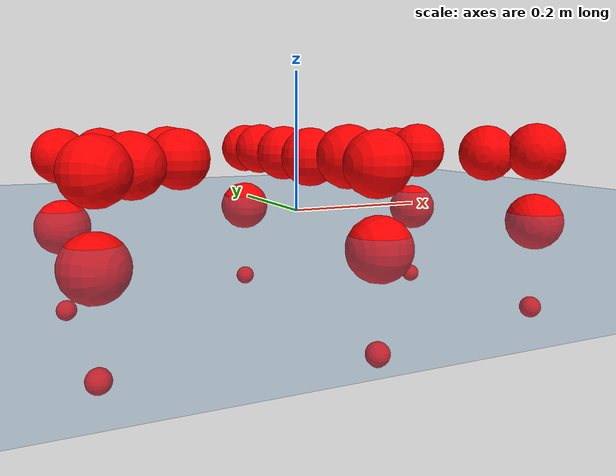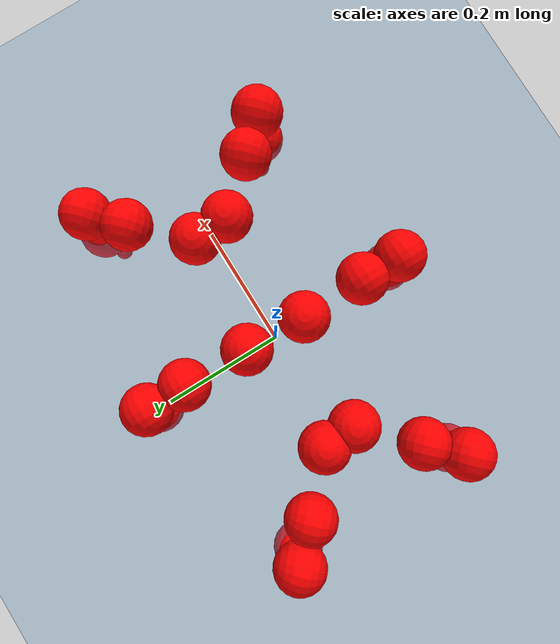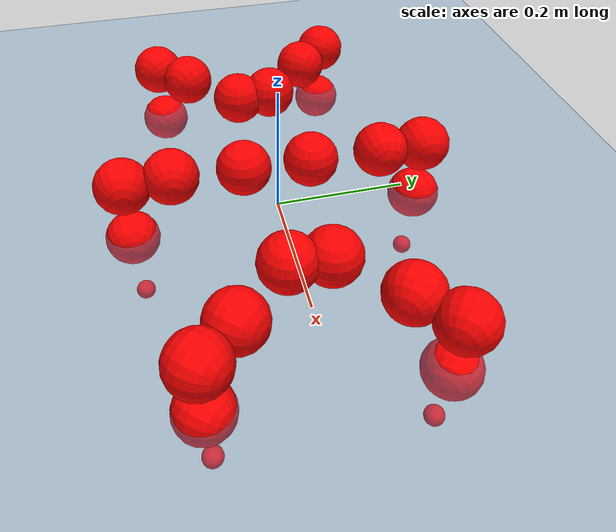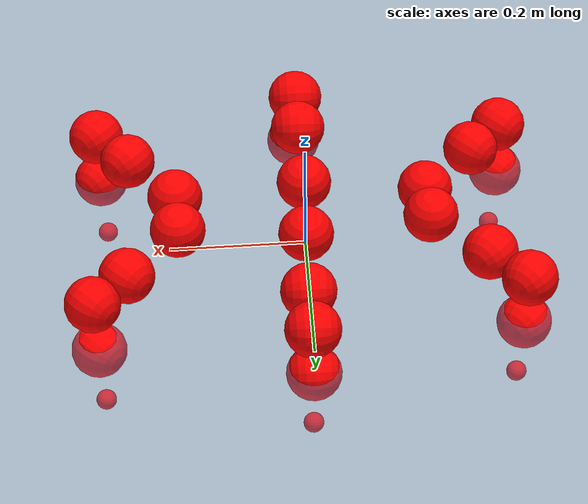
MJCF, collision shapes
<mujoco model="Golem">
  <compiler angle="radian" assetdir="assets" balanceinertia="true" inertiafromgeom="false"/>

  <option timestep="0.005" density="1.2" viscosity="2e-05"/>

  <size nkey="1"/>

  <visual>
    <quality shadowsize="8192"/>
    <map shadowclip="0.5"/>
  </visual>

  <default>
    <default class="/">
      <joint armature="0.01" damping="0.01" frictionloss="0.01"/>
      <geom contype="0" conaffinity="0" group="1" solref="-1000 -80"/>
      <site size="0.01 0.005 0.005" group="5"/>
      <general forcelimited="true" biastype="affine" gainprm="25" biasprm="0 -25 -0.5"/>
      <default class="visual">
        <geom type="mesh" group="2"/>
      </default>
      <default class="collision">
        <geom group="3"/>
      </default>
      <default class="foot">
        <geom size="0.01 0 0" condim="6" group="4" priority="1" solimp="0.015 1 0.01"/>
      </default>
      <default class="reward_collision_sphere">
        <geom group="5" rgba="1 0 0 1"/>
      </default>
    </default>
  </default>

  <asset>
    <texture type="skybox" colorspace="auto" name="//unnamed_texture_0" builtin="gradient" rgb1="0.95 0.95 0.95" rgb2="0.95 0.95 0.95" width="100" height="600"/>
    <texture type="2d" colorspace="auto" name="texplane" builtin="checker" rgb1="0.345 0.575 0.748" rgb2="0.345 0.575 0.748" markrgb="1 1 1" width="512" height="512"/>
    <material name="MatPlane" class="/" texture="texplane" texuniform="true" texrepeat="2 2" specular="0.9"/>
    <mesh name="body" class="/" file="body.stl" scale="0.001 0.001 0.001"/>
    <mesh name="coxa" class="/" file="coxa.stl" scale="0.001 0.001 0.001"/>
    <mesh name="femur" class="/" file="femur.stl" scale="0.001 0.001 0.001"/>
    <mesh name="tibia" class="/" file="tibia.stl" scale="0.001 0.001 0.001"/>
    <mesh name="tarsus" class="/" file="tarsus.stl" scale="0.001 0.001 0.001"/>
  </asset>

  <worldbody>
    <geom name="floor" class="/" size="100 100 0.125" type="plane" group="0" material="MatPlane"/>
    <light name="toplight_shadow" class="/" pos="0 0 5" dir="0.0990148 0.0990148 -0.990148" type="directional" ambient="0.04 0.04 0.04" diffuse="0.55 0.55 0.55" specular="0.12 0.12 0.12"/>
    <light name="toplight_fill" class="/" pos="0 0 5" dir="0.0990148 0.0990148 -0.990148" type="directional" castshadow="false" ambient="0.04 0.04 0.04" diffuse="0.3 0.3 0.3" specular="0.08 0.08 0.08"/>
    <body name="trunk" pos="0.0024456 -0.000372218 0.00295003" quat="1 0.000508624 1.15599e-05 -0.000568166">
      <inertial pos="9.54311e-05 -0.00128859 0.000978605" quat="0.999955 0.00770873 -0.00460553 0.0030825" mass="3.71865" diaginertia="0.0209806 0.00098353 0.0262997"/>
      <joint name="//unnamed_joint_0" type="free"/>
      <geom name="//unnamed_geom_1" class="/" pos="0 0 0.0775987" quat="1 0 0 0" type="mesh" rgba="0.9 0.9 0.9 1" mesh="body"/>
      <site name="imu" class="/" pos="0.143314 0.00163401 0.112402" size="0.010045"/>
      <camera name="track" class="/" pos="0 -1.2675 0" quat="0.707107 0.707107 0 0" mode="trackcom"/>
      <camera name="ego_camera" class="/" pos="0.151747 0 0.121248" quat="-0.5 -0.5 0.5 0.5"/>
      <body name="coxa_RR" pos="-0.204894 -0.0505349 0.0772011" quat="0.383376 0.00205026 -0.000699598 -0.92359">
        <inertial pos="0.00393083 -0.0004364 0.00172146" quat="0.999954 -0.00260786 -0.00912492 0.00111986" mass="0.207353" diaginertia="0.0218545 0.00104359 0.0275205"/>
        <joint name="coxa_joint_RR" class="/" pos="0 0 0" axis="-0.00198594 -0.00482709 -0.999986" range="-3.1699 3.18875" armature="0.00892997" damping="0.00178943" frictionloss="0.00906602"/>
        <geom name="//unnamed_geom_2" class="/" type="mesh" rgba="0.2 0.2 0.2 1" mesh="coxa"/>
        <geom name="//unnamed_geom_3" class="reward_collision_sphere" size="0.0401802" pos="-0.0350185 0 0"/>
        <body name="femur_RR" pos="0.0712766 -0.00124527 -0.000941169" quat="0.499991 -0.500254 0.499986 0.499769">
          <inertial pos="-0.0014592 -0.00196913 -0.00285101" quat="1 -0.000406336 -6.13202e-05 0.000769318" mass="0.204781" diaginertia="0.021633 0.00102702 0.0275995"/>
          <joint name="femur_joint_RR" class="/" pos="0 0 0" axis="0.00452936 -0.00854965 -0.999953" range="-3.08967 3.15592" armature="0.00938645" damping="0.0171984" frictionloss="0.0088207"/>
          <geom name="//unnamed_geom_4" class="/" type="mesh" rgba="0.9 0.9 0.9 1" mesh="femur"/>
          <geom name="//unnamed_geom_5" class="reward_collision_sphere" size="0.0401802"/>
          <body name="tibia_RR" pos="0.0014087 -0.0666811 -0.000356428" quat="1.94252e-05 1 0.000117009 5.96115e-05">
            <inertial pos="-0.0016971 -0.00212097 0.00292356" quat="0.999945 0.00921498 -0.00486289 0.000897936" mass="0.195874" diaginertia="0.0217561 0.00100488 0.0265725"/>
            <joint name="tibia_joint_RR" class="/" pos="0 0 0" axis="0.0038834 -0.00478656 0.999981" range="-3.13711 3.14753" armature="0.010038" damping="0.0155451" frictionloss="0.0110864"/>
            <geom name="//unnamed_geom_6" class="/" type="mesh" rgba="0.2 0.2 0.2 1" mesh="tibia"/>
            <geom name="//unnamed_geom_7" class="reward_collision_sphere" size="0.0401802"/>
            <body name="tarsus_RR" pos="0.103893 0.00254948 0.00296432" quat="0.999999 -0.000833929 -0.000902855 0.000185153">
              <inertial pos="0.072712 0.00378451 0.00205735" quat="0.491646 0.509004 0.497306 0.501882" mass="0.211969" diaginertia="0.0215364 0.00101452 0.0264688"/>
              <joint name="tarsus_joint_RR" class="/" pos="0 0 0" axis="0.00448569 0.00259135 0.999987" range="-3.14078 3.10576" armature="0.00965475" damping="0.0126246" frictionloss="0.00885936"/>
              <geom name="//unnamed_geom_8" class="/" type="mesh" rgba="0.9 0.9 0.9 1" mesh="tarsus"/>
              <geom name="foot_1" class="foot" size="0.00924164" pos="0.130736 0 0" quat="0 -0.707107 0 0.707107"/>
              <geom name="//unnamed_geom_10" class="reward_collision_sphere" size="0.0401802"/>
              <geom name="//unnamed_geom_11" class="reward_collision_sphere" size="0.0150676" pos="0.125483 0 0"/>
              <site name="foot_1" class="foot" pos="0.130736 0 0" quat="0 -0.707107 0 0.707107" size="0.010045"/>
            </body>
          </body>
        </body>
      </body>
      <body name="coxa_RM" pos="-0.00383827 -0.0840326 0.0774541" quat="0.707676 0.000195449 3.74753e-05 -0.706537">
        <inertial pos="-0.000641083 -0.000513548 0.00467614" quat="0.999922 0.00327411 -0.011547 -0.00343867" mass="0.206341" diaginertia="0.0220643 0.00105844 0.0271017"/>
        <joint name="coxa_joint_RM" class="/" pos="0 0 0" axis="0.00486744 -0.00180992 -0.999987" range="-3.13857 3.09368" armature="0.00931767" damping="0.017567" frictionloss="0.0102434"/>
        <geom name="//unnamed_geom_12" class="/" type="mesh" rgba="0.2 0.2 0.2 1" mesh="coxa"/>
        <geom name="//unnamed_geom_13" class="reward_collision_sphere" size="0.0401802" pos="-0.0350185 0 0"/>
        <body name="femur_RM" pos="0.0687073 0.00222522 0.00569399" quat="0.498506 -0.501633 0.499868 0.499988">
          <inertial pos="-0.00253959 -0.0004412 0.000120633" quat="0.999862 -0.000138116 -0.00317149 0.0163006" mass="0.208799" diaginertia="0.0210234 0.000999773 0.0259536"/>
          <joint name="femur_joint_RM" class="/" pos="0 0 0" axis="-0.00649038 0.00988999 -0.99993" range="-3.10808 3.10641" armature="0.0080909" damping="0.000226477" frictionloss="0.00975513"/>
          <geom name="//unnamed_geom_14" class="/" type="mesh" rgba="0.9 0.9 0.9 1" mesh="femur"/>
          <geom name="//unnamed_geom_15" class="reward_collision_sphere" size="0.0401802"/>
          <body name="tibia_RM" pos="0.00483138 -0.0675708 -0.000491453" quat="0.000106999 1 0.000393455 -0.000166747">
            <inertial pos="-0.00225051 0.000829533 0.00256879" quat="0.999976 0.0016508 -0.00663613 0.000782399" mass="0.213547" diaginertia="0.0227088 0.00104378 0.0258939"/>
            <joint name="tibia_joint_RM" class="/" pos="0 0 0" axis="0.00415576 0.0111173 0.99993" range="-3.11263 3.17297" armature="0.0107767" damping="0" frictionloss="0.00888209"/>
            <geom name="//unnamed_geom_16" class="/" type="mesh" rgba="0.2 0.2 0.2 1" mesh="tibia"/>
            <geom name="//unnamed_geom_17" class="reward_collision_sphere" size="0.0401802"/>
            <body name="tarsus_RM" pos="0.0988293 0.00165561 -0.00367781" quat="1 7.67812e-05 0.000834842 0.000477954">
              <inertial pos="0.0680437 0.000492886 -0.00161217" quat="0.499508 0.497837 0.500663 0.501982" mass="0.202667" diaginertia="0.0209605 0.00101863 0.0253395"/>
              <joint name="tarsus_joint_RM" class="/" pos="0 0 0" axis="-0.000121806 -0.0104548 0.999945" stiffness="0.0179528" range="-3.11298 3.04094" armature="0.00977588" damping="0.0246622" frictionloss="0.00879432"/>
              <geom name="//unnamed_geom_18" class="/" type="mesh" rgba="0.9 0.9 0.9 1" mesh="tarsus"/>
              <geom name="foot_2" class="foot" size="0.0108811" pos="0.130736 0 0" quat="0 -0.707107 0 0.707107"/>
              <geom name="//unnamed_geom_20" class="reward_collision_sphere" size="0.0401802"/>
              <geom name="//unnamed_geom_21" class="reward_collision_sphere" size="0.0150676" pos="0.125483 0 0"/>
              <site name="foot_2" class="foot" pos="0.130736 0 0" quat="0 -0.707107 0 0.707107" size="0.010045"/>
            </body>
          </body>
        </body>
      </body>
      <body name="coxa_RF" pos="0.21059 -0.0541416 0.0817807" quat="0.923717 0.000993733 -0.000606529 -0.383074">
        <inertial pos="-0.00268994 0.00236609 -0.00252377" quat="0.999917 0.0109476 0.00464912 0.00503557" mass="0.194815" diaginertia="0.0209119 0.000992249 0.0262389"/>
        <joint name="coxa_joint_RF" class="/" pos="0 0 0" axis="-0.00563641 0.0095818 -0.999938" range="-3.13291 3.08917" armature="0.0103026" damping="0.00571985" frictionloss="0.00901877"/>
        <geom name="//unnamed_geom_22" class="/" type="mesh" rgba="0.2 0.2 0.2 1" mesh="coxa"/>
        <geom name="//unnamed_geom_23" class="reward_collision_sphere" size="0.0401802" pos="-0.0350185 0 0"/>
        <body name="femur_RF" pos="0.0668861 -0.00511519 -0.00208214" quat="0.497878 -0.50061 0.501094 0.500413">
          <inertial pos="0.00212819 -0.0018727 -0.00172966" quat="0.999991 -0.000493354 0.000193483 -0.00415268" mass="0.198674" diaginertia="0.021137 0.0010272 0.0253053"/>
          <joint name="femur_joint_RF" class="/" pos="0 0 0" axis="0.0122595 -0.0013249 -0.999924" stiffness="0.00596431" range="-3.11245 3.15801" armature="0.00897174" damping="0.0157289" frictionloss="0.00989483"/>
          <geom name="//unnamed_geom_24" class="/" type="mesh" rgba="0.9 0.9 0.9 1" mesh="femur"/>
          <geom name="//unnamed_geom_25" class="reward_collision_sphere" size="0.0401802"/>
          <body name="tibia_RF" pos="-0.00366723 -0.0668423 -0.00193411" quat="0.000108635 0.999999 0.00113607 -0.000406422">
            <inertial pos="-0.0017054 0.00119437 -0.000725394" quat="0.999955 -0.00479742 0.00227625 -0.00787838" mass="0.21885" diaginertia="0.0231343 0.00107361 0.026706"/>
            <joint name="tibia_joint_RF" class="/" pos="0 0 0" axis="-0.000239935 0.00139258 0.999999" stiffness="0.0218966" range="-3.11684 3.16976" armature="0.0103247" damping="0.0382225" frictionloss="0.01017"/>
            <geom name="//unnamed_geom_26" class="/" type="mesh" rgba="0.2 0.2 0.2 1" mesh="tibia"/>
            <geom name="//unnamed_geom_27" class="reward_collision_sphere" size="0.0401802"/>
            <body name="tarsus_RF" pos="0.100006 0.00246588 0.000552059" quat="1 9.36322e-05 4.91998e-05 -2.46877e-05">
              <inertial pos="0.0718278 0.000840232 0.00241089" quat="0.50148 0.499125 0.500322 0.499069" mass="0.198803" diaginertia="0.0224658 0.00100231 0.0266754"/>
              <joint name="tarsus_joint_RF" class="/" pos="0 0 0" axis="0.00197751 -0.0147776 0.999889" range="-3.13624 3.08707" armature="0.0112566" damping="0" frictionloss="0.00894913"/>
              <geom name="//unnamed_geom_28" class="/" type="mesh" rgba="0.9 0.9 0.9 1" mesh="tarsus"/>
              <geom name="foot_3" class="foot" size="0.00989169" pos="0.130736 0 0" quat="0 -0.707107 0 0.707107"/>
              <geom name="//unnamed_geom_30" class="reward_collision_sphere" size="0.0401802"/>
              <geom name="//unnamed_geom_31" class="reward_collision_sphere" size="0.0150676" pos="0.125483 0 0"/>
              <site name="foot_3" class="foot" pos="0.130736 0 0" quat="0 -0.707107 0 0.707107" size="0.010045"/>
            </body>
          </body>
        </body>
      </body>
      <body name="coxa_LR" pos="-0.207973 0.0521702 0.0790821" quat="0.382828 -9.4668e-05 -4.0911e-05 0.92382">
        <inertial pos="0.000949489 -0.00239478 0.000815711" quat="0.999999 -0.00125303 0.000732931 -0.000514694" mass="0.207422" diaginertia="0.0226754 0.00105736 0.0267721"/>
        <joint name="coxa_joint_LR" class="/" pos="0 0 0" axis="0.00624045 -0.00318527 -0.999975" range="-3.12623 3.09321" armature="0.0111414" damping="0.00391898" frictionloss="0.00959149"/>
        <geom name="//unnamed_geom_32" class="/" type="mesh" rgba="0.2 0.2 0.2 1" mesh="coxa"/>
        <geom name="//unnamed_geom_33" class="reward_collision_sphere" size="0.0401802" pos="-0.0350185 0 0"/>
        <body name="femur_LR" pos="0.0709167 0.00376903 -0.0024509" quat="0.499904 -0.500096 0.499987 0.500012">
          <inertial pos="-0.00120739 -0.00165456 0.00395649" quat="0.99998 -0.000211175 0.00351471 -0.00515799" mass="0.212198" diaginertia="0.0223559 0.00105966 0.027151"/>
          <joint name="femur_joint_LR" class="/" pos="0 0 0" axis="0.00649533 0.0198484 0.999782" stiffness="0.00573984" range="-3.15973 3.13552" armature="0.0102903" damping="0.000503702" frictionloss="0.00898176"/>
          <geom name="//unnamed_geom_34" class="/" type="mesh" rgba="0.9 0.9 0.9 1" mesh="femur"/>
          <geom name="//unnamed_geom_35" class="reward_collision_sphere" size="0.0401802"/>
          <body name="tibia_LR" pos="0.00116048 -0.0707945 0.000118984" quat="8.23058e-05 1 0.000607831 -0.000312328">
            <inertial pos="-0.0017773 -0.00209548 -0.000756047" quat="0.999917 0.00714577 0.0105338 -0.0021029" mass="0.205506" diaginertia="0.0226447 0.00104057 0.0258788"/>
            <joint name="tibia_joint_LR" class="/" pos="0 0 0" axis="-0.0191511 -0.0153689 -0.999698" range="-3.16727 3.23869" armature="0.00785308" damping="0.0363557" frictionloss="0.0100295"/>
            <geom name="//unnamed_geom_36" class="/" type="mesh" rgba="0.2 0.2 0.2 1" mesh="tibia"/>
            <geom name="//unnamed_geom_37" class="reward_collision_sphere" size="0.0401802"/>
            <body name="tarsus_LR" pos="0.104258 -0.00080385 -0.00218549" quat="0.999999 0.000134606 -0.000331992 -0.0012308">
              <inertial pos="0.0660616 -0.00203243 0.0050744" quat="0.500827 0.499297 0.499942 0.499933" mass="0.205636" diaginertia="0.0216124 0.000988631 0.0269171"/>
              <joint name="tarsus_joint_LR" class="/" pos="0 0 0" axis="0.00412113 -0.00081398 -0.999991" range="-3.12912 3.12083" armature="0.0103534" damping="0" frictionloss="0.0102478"/>
              <geom name="//unnamed_geom_38" class="/" type="mesh" rgba="0.9 0.9 0.9 1" mesh="tarsus"/>
              <geom name="foot_4" class="foot" size="0.010388" pos="0.130736 0 0" quat="0.707107 0 -0.707107 0"/>
              <geom name="//unnamed_geom_40" class="reward_collision_sphere" size="0.0401802"/>
              <geom name="//unnamed_geom_41" class="reward_collision_sphere" size="0.0150676" pos="0.125483 0 0"/>
              <site name="foot_4" class="foot" pos="0.130736 0 0" quat="0.707107 0 -0.707107 0" size="0.010045"/>
            </body>
          </body>
        </body>
      </body>
      <body name="coxa_LM" pos="-0.000537866 0.0844755 0.0783208" quat="0.707786 0.000208066 -0.000984986 0.706427">
        <inertial pos="0.000384765 0.00267696 -0.00441058" quat="0.999972 -0.00120496 -0.00577636 -0.00451913" mass="0.197711" diaginertia="0.0203825 0.000988807 0.0255518"/>
        <joint name="coxa_joint_LM" class="/" pos="0 0 0" axis="0.00537285 0.00564249 -0.99997" range="-3.15931 3.0938" armature="0.0119952" damping="0.00850564" frictionloss="0.0102492"/>
        <geom name="//unnamed_geom_42" class="/" type="mesh" rgba="0.2 0.2 0.2 1" mesh="coxa"/>
        <geom name="//unnamed_geom_43" class="reward_collision_sphere" size="0.0401802" pos="-0.0350185 0 0"/>
        <body name="femur_LM" pos="0.0705502 -0.00325861 0.00152304" quat="0.499985 -0.499952 0.500064 0.5">
          <inertial pos="0.00388244 0.000575219 -0.000338514" quat="0.999989 -0.00247398 -0.00131458 -0.00372513" mass="0.215264" diaginertia="0.021804 0.00107369 0.0280763"/>
          <joint name="femur_joint_LM" class="/" pos="0 0 0" axis="-0.0141739 -0.000464583 0.999899" range="-3.14877 3.14411" armature="0.00893811" damping="0.000842696" frictionloss="0.00950749"/>
          <geom name="//unnamed_geom_44" class="/" type="mesh" rgba="0.9 0.9 0.9 1" mesh="femur"/>
          <geom name="//unnamed_geom_45" class="reward_collision_sphere" size="0.0401802"/>
          <body name="tibia_LM" pos="0.0017645 -0.0661829 0.00171408" quat="0.00127051 0.999999 -8.68079e-05 3.18557e-05">
            <inertial pos="0.00281251 8.26667e-05 -0.000510449" quat="0.999985 0.00475573 -0.00185178 -0.00187237" mass="0.206645" diaginertia="0.0217879 0.000986714 0.0260984"/>
            <joint name="tibia_joint_LM" class="/" pos="0 0 0" axis="-0.00590057 -0.0132616 -0.999895" range="-3.10124 3.09346" armature="0.0115341" damping="0.000783138" frictionloss="0.0109328"/>
            <geom name="//unnamed_geom_46" class="/" type="mesh" rgba="0.2 0.2 0.2 1" mesh="tibia"/>
            <geom name="//unnamed_geom_47" class="reward_collision_sphere" size="0.0401802"/>
            <body name="tarsus_LM" pos="0.100694 0.00221234 -0.00170776" quat="1 -4.81816e-05 -4.04387e-05 3.28894e-05">
              <inertial pos="0.0667566 -0.00214155 -0.00231047" quat="0.500026 0.499937 0.499912 0.500125" mass="0.204119" diaginertia="0.0212514 0.00100555 0.0257086"/>
              <joint name="tarsus_joint_LM" class="/" pos="0 0 0" axis="-0.00194828 -0.00424768 -0.999989" stiffness="0.0118513" range="-3.15955 3.13213" armature="0.00984593" damping="0.0251623" frictionloss="0.00876078"/>
              <geom name="//unnamed_geom_48" class="/" type="mesh" rgba="0.9 0.9 0.9 1" mesh="tarsus"/>
              <geom name="foot_5" class="foot" size="0.00982858" pos="0.130736 0 0" quat="0.707107 0 -0.707107 0"/>
              <geom name="//unnamed_geom_50" class="reward_collision_sphere" size="0.0401802"/>
              <geom name="//unnamed_geom_51" class="reward_collision_sphere" size="0.0150676" pos="0.125483 0 0"/>
              <site name="foot_5" class="foot" pos="0.130736 0 0" quat="0.707107 0 -0.707107 0" size="0.010045"/>
            </body>
          </body>
        </body>
      </body>
      <body name="coxa_LF" pos="0.208105 0.0530235 0.0757011" quat="0.923618 0.00129351 0.000132946 0.383313">
        <inertial pos="-0.000818748 -0.000840222 0.00242878" quat="0.999884 0.00657601 -0.00137942 0.0136941" mass="0.203245" diaginertia="0.0203033 0.00105167 0.0262046"/>
        <joint name="coxa_joint_LF" class="/" pos="0 0 0" axis="-0.000825133 -0.00805055 -0.999967" range="-3.09565 3.18412" armature="0.00950927" damping="0.00279822" frictionloss="0.00939394"/>
        <geom name="//unnamed_geom_52" class="/" type="mesh" rgba="0.2 0.2 0.2 1" mesh="coxa"/>
        <geom name="//unnamed_geom_53" class="reward_collision_sphere" size="0.0401802" pos="-0.0350185 0 0"/>
        <body name="femur_LF" pos="0.0723677 0.00250417 -0.00220016" quat="0.500342 -0.5001 0.500364 0.499194">
          <inertial pos="0.001525 -0.000432896 0.00046651" quat="0.999951 0.00351951 -0.00920263 -0.00131785" mass="0.19645" diaginertia="0.0220754 0.00103755 0.0262759"/>
          <joint name="femur_joint_LF" class="/" pos="0 0 0" axis="0.014 -0.00199979 0.9999" stiffness="0.00678831" range="-3.08998 3.15953" armature="0.010154" damping="0.0123519" frictionloss="0.00992589"/>
          <geom name="//unnamed_geom_54" class="/" type="mesh" rgba="0.9 0.9 0.9 1" mesh="femur"/>
          <geom name="//unnamed_geom_55" class="reward_collision_sphere" size="0.0401802"/>
          <body name="tibia_LF" pos="0.00401541 -0.066098 -0.00269474" quat="-0.000150704 1 0.000103945 -0.00010937">
            <inertial pos="0.00137702 -0.000422543 -0.00192879" quat="0.999706 0.000579682 0.0141858 0.0196754" mass="0.194517" diaginertia="0.0217493 0.00105137 0.0255456"/>
            <joint name="tibia_joint_LF" class="/" pos="0 0 0" axis="0.00475329 0.0110866 -0.999927" stiffness="0.020769" range="-3.13231 3.17328" armature="0.0100585" damping="0.0223361" frictionloss="0.00884416"/>
            <geom name="//unnamed_geom_56" class="/" type="mesh" rgba="0.2 0.2 0.2 1" mesh="tibia"/>
            <geom name="//unnamed_geom_57" class="reward_collision_sphere" size="0.0401802"/>
            <body name="tarsus_LF" pos="0.102991 0.00153265 -0.00315587" quat="1 8.66166e-05 0.0009254 5.75862e-05">
              <inertial pos="0.0693619 -0.00298476 -0.000383917" quat="0.499352 0.506784 0.489739 0.503958" mass="0.217309" diaginertia="0.0227585 0.00106645 0.0270468"/>
              <joint name="tarsus_joint_LF" class="/" pos="0 0 0" axis="-0.0113989 -0.000142476 -0.999935" stiffness="0.00494634" range="-3.19084 3.16411" armature="0.00930448" damping="0" frictionloss="0.0101382"/>
              <geom name="//unnamed_geom_58" class="/" type="mesh" rgba="0.9 0.9 0.9 1" mesh="tarsus"/>
              <geom name="foot_6" class="foot" size="0.0100044" pos="0.130736 0 0" quat="0.707107 0 -0.707107 0"/>
              <geom name="//unnamed_geom_60" class="reward_collision_sphere" size="0.0401802"/>
              <geom name="//unnamed_geom_61" class="reward_collision_sphere" size="0.0150676" pos="0.125483 0 0"/>
              <site name="foot_6" class="foot" pos="0.130736 0 0" quat="0.707107 0 -0.707107 0" size="0.010045"/>
            </body>
          </body>
        </body>
      </body>
    </body>
  </worldbody>

  <contact>
    <pair class="/" geom1="floor" geom2="foot_1" name="//unnamed_contact_0"/>
    <pair class="/" geom1="floor" geom2="foot_2" name="//unnamed_contact_1"/>
    <pair class="/" geom1="floor" geom2="foot_3" name="//unnamed_contact_2"/>
    <pair class="/" geom1="floor" geom2="foot_4" name="//unnamed_contact_3"/>
    <pair class="/" geom1="floor" geom2="foot_5" name="//unnamed_contact_4"/>
    <pair class="/" geom1="floor" geom2="foot_6" name="//unnamed_contact_5"/>
  </contact>

  <actuator>
    <general name="coxa_joint_RR" class="/" joint="coxa_joint_RR" forcerange="-7.01808 7.01808" gainprm="24.4224" biasprm="0 -24.4224 -0.473121"/>
    <general name="femur_joint_RR" class="/" joint="femur_joint_RR" forcerange="-7.44101 7.44101" gainprm="24.4224" biasprm="0 -24.4224 -0.473121"/>
    <general name="tibia_joint_RR" class="/" joint="tibia_joint_RR" forcerange="-7.88215 7.88215" gainprm="24.4224" biasprm="0 -24.4224 -0.473121"/>
    <general name="tarsus_joint_RR" class="/" joint="tarsus_joint_RR" forcerange="-7.90336 7.90336" gainprm="24.4224" biasprm="0 -24.4224 -0.473121"/>
    <general name="coxa_joint_RM" class="/" joint="coxa_joint_RM" forcerange="-5.96893 5.96893" gainprm="24.4224" biasprm="0 -24.4224 -0.473121"/>
    <general name="femur_joint_RM" class="/" joint="femur_joint_RM" forcerange="-7.10034 7.10034" gainprm="24.4224" biasprm="0 -24.4224 -0.473121"/>
    <general name="tibia_joint_RM" class="/" joint="tibia_joint_RM" forcerange="-7.87181 7.87181" gainprm="24.4224" biasprm="0 -24.4224 -0.473121"/>
    <general name="tarsus_joint_RM" class="/" joint="tarsus_joint_RM" forcerange="-7.89743 7.89743" gainprm="24.4224" biasprm="0 -24.4224 -0.473121"/>
    <general name="coxa_joint_RF" class="/" joint="coxa_joint_RF" forcerange="-6.94538 6.94538" gainprm="24.4224" biasprm="0 -24.4224 -0.473121"/>
    <general name="femur_joint_RF" class="/" joint="femur_joint_RF" forcerange="-7.42909 7.42909" gainprm="24.4224" biasprm="0 -24.4224 -0.473121"/>
    <general name="tibia_joint_RF" class="/" joint="tibia_joint_RF" forcerange="-7.39944 7.39944" gainprm="24.4224" biasprm="0 -24.4224 -0.473121"/>
    <general name="tarsus_joint_RF" class="/" joint="tarsus_joint_RF" forcerange="-7.30784 7.30784" gainprm="24.4224" biasprm="0 -24.4224 -0.473121"/>
    <general name="coxa_joint_LR" class="/" joint="coxa_joint_LR" forcerange="-6.53034 6.53034" gainprm="24.4224" biasprm="0 -24.4224 -0.473121"/>
    <general name="femur_joint_LR" class="/" joint="femur_joint_LR" forcerange="-7.394 7.394" gainprm="24.4224" biasprm="0 -24.4224 -0.473121"/>
    <general name="tibia_joint_LR" class="/" joint="tibia_joint_LR" forcerange="-7.16963 7.16963" gainprm="24.4224" biasprm="0 -24.4224 -0.473121"/>
    <general name="tarsus_joint_LR" class="/" joint="tarsus_joint_LR" forcerange="-6.37034 6.37034" gainprm="24.4224" biasprm="0 -24.4224 -0.473121"/>
    <general name="coxa_joint_LM" class="/" joint="coxa_joint_LM" forcerange="-7.82402 7.82402" gainprm="24.4224" biasprm="0 -24.4224 -0.473121"/>
    <general name="femur_joint_LM" class="/" joint="femur_joint_LM" forcerange="-8.00559 8.00559" gainprm="24.4224" biasprm="0 -24.4224 -0.473121"/>
    <general name="tibia_joint_LM" class="/" joint="tibia_joint_LM" forcerange="-6.6275 6.6275" gainprm="24.4224" biasprm="0 -24.4224 -0.473121"/>
    <general name="tarsus_joint_LM" class="/" joint="tarsus_joint_LM" forcerange="-6.05935 6.05935" gainprm="24.4224" biasprm="0 -24.4224 -0.473121"/>
    <general name="coxa_joint_LF" class="/" joint="coxa_joint_LF" forcerange="-7.44668 7.44668" gainprm="24.4224" biasprm="0 -24.4224 -0.473121"/>
    <general name="femur_joint_LF" class="/" joint="femur_joint_LF" forcerange="-7.38586 7.38586" gainprm="24.4224" biasprm="0 -24.4224 -0.473121"/>
    <general name="tibia_joint_LF" class="/" joint="tibia_joint_LF" forcerange="-6.67399 6.67399" gainprm="24.4224" biasprm="0 -24.4224 -0.473121"/>
    <general name="tarsus_joint_LF" class="/" joint="tarsus_joint_LF" forcerange="-6.90196 6.90196" gainprm="24.4224" biasprm="0 -24.4224 -0.473121"/>
  </actuator>

  <sensor>
    <gyro site="imu" name="imu_angular_velocity"/>
    <velocimeter site="imu" name="imu_linear_velocity"/>
    <framelinvel objtype="site" objname="foot_1" name="foot_1_global_linear_velocity"/>
    <framelinvel objtype="site" objname="foot_2" name="foot_2_global_linear_velocity"/>
    <framelinvel objtype="site" objname="foot_3" name="foot_3_global_linear_velocity"/>
    <framelinvel objtype="site" objname="foot_4" name="foot_4_global_linear_velocity"/>
    <framelinvel objtype="site" objname="foot_5" name="foot_5_global_linear_velocity"/>
    <framelinvel objtype="site" objname="foot_6" name="foot_6_global_linear_velocity"/>
  </sensor>

  <keyframe>
    <key name="home" qpos="0 0 0.1457 1 0 0 0 0 0 0 0 0 0 0 0 0 0 0 0 0 0 0 0 0 0 0 0 0 0 0 0"/>
  </keyframe>
</mujoco>
